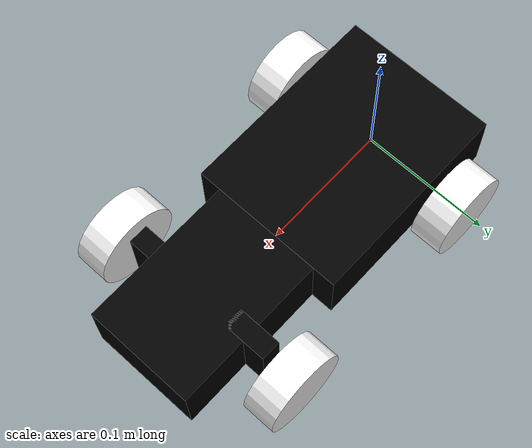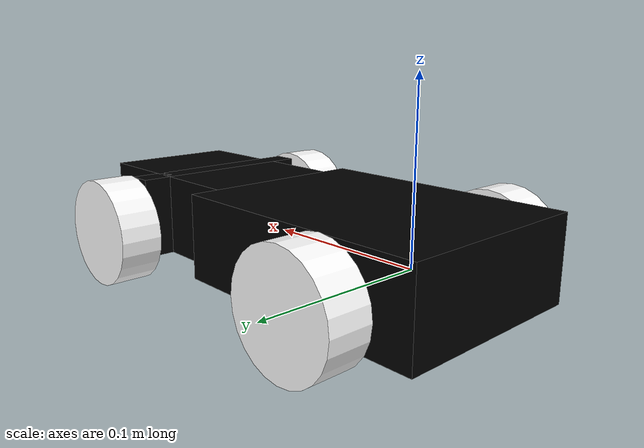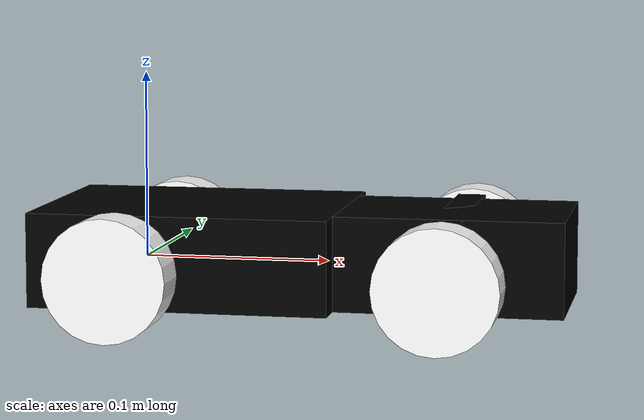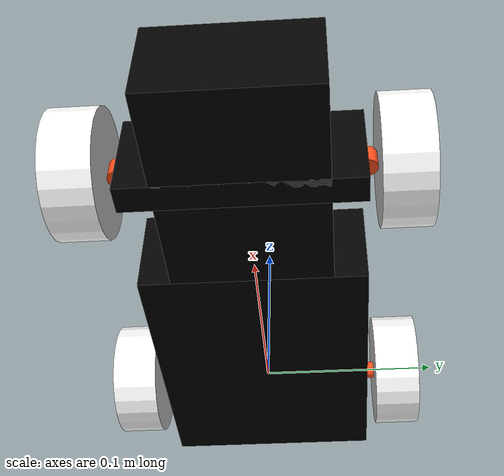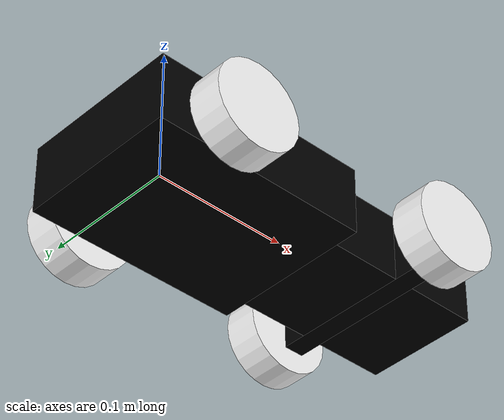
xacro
<?xml version="1.0"?>
<robot xmlns:xacro="http://www.ros.org/wiki/xacro">

    <xacro:include filename="inertial_macros.xacro"/>
    <xacro:property name="pi" value="3.141592653589793"/>

    <material name="white">
        <color rgba = "1 1 1 1" />
    </material>

    <material name="orange">
        <color rgba = "1 0.3 0.1 1" />
    </material>

    <material name="blue">
        <color rgba = "0.2 0.2 1 1" />
    </material>

    <material name="black">
        <color rgba = "0 0 0 1" />
    </material>

    <!--BASE LINK-->

    <link name="base_link">
        <origin xyz="0 0 0.07 "/>
    </link>

    <!--BACK CHSASSIS LINK-->

    <joint name="back_chassis_joint" type="fixed">
        <parent link="base_link"/>
        <child link = "back_chassis"/>
        <origin xyz="-0.05 0 -0.02 "/>
    </joint>

    <link name="back_chassis">
        <visual>
            <origin xyz="0.08 0 0.025"/>
            <geometry>
                <box size="0.16 0.12 0.05"/>
            </geometry>

            <material name="black"/>
        </visual>
        <collision>
            <origin xyz="0.08 0 0.025"/>
            <geometry>
                <box size="0.16 0.12 0.05"/>
            </geometry>
        </collision>
        <xacro:inertial_box mass="0.6" x="0.16" y="0.12" z ="0.05">
            <origin xyz="0.08 0 0.025" rpy="0 0 0"/>
        </xacro:inertial_box>
    </link>

    <gazebo reference="back_chassis">
        <material>Gazebo/Black</material>
    </gazebo>

    <!--FRONT CHSASSIS LINK-->

    <joint name="chassis_front_joint" type="fixed">
        <parent link="back_chassis"/>
        <child link = "front_chassis"/>
        <origin xyz="0.16 0 0 "/>
    </joint>

    <link name="front_chassis">
        <visual>
            <origin xyz="0.06 0 0.025"/>
            <geometry>
                <box size="0.12 0.085 0.05"/>
            </geometry>
            <material name="black"/>
        </visual>
        <collision>
            <origin xyz="0.06 0 0.025"/>
            <geometry>
                <box size="0.12 0.085 0.05"/>
            </geometry>
        </collision>
        <xacro:inertial_box mass="0.3" x="0.12" y="0.85" z ="0.05">
            <origin xyz="0.06 0 0.025" rpy="0 0 0"/>
        </xacro:inertial_box>
    </link>

    <gazebo reference="front_chassis">
        <material>Gazebo/Black</material>
    </gazebo>

    <!-- STEERING ROD -->

    <joint name="steering_rod_joint" type="fixed">
        <parent link="base_link"/>
        <child link="steering_rod"/>
        <origin xyz="0.17 0 0.005"/>
    </joint>

    <link name="steering_rod">
        <visual>
            <origin xyz="0 0 0"/>
            <geometry>
            <box size="0.015 0.12 0.05"/>
            </geometry>
            <material name="black"/>
        </visual>
        <collision>
            <origin xyz="0 0 0"/>
            <geometry>
            <box size="0.015 0.12 0.05"/>
            </geometry>
        </collision>
        <xacro:inertial_box mass="0.15" x="0.15" y="0.12" z ="0.05">
            <origin xyz="0 0 0" rpy="0 0 0"/>
        </xacro:inertial_box>
    </link>

    <gazebo reference="steering_rod">
        <material>Gazebo/Black</material>
    </gazebo>

    <!--LEFT BACK WHEEL'S AXIS-->

    <joint name="left_back_axis_joint" type="fixed">
        <parent link="base_link"/>
        <child link="left_back_axis"/>
        <origin xyz="0 0.06 0" rpy="-${pi/2} 0 0"/>

    </joint>

    <link name="left_back_axis">
        <visual>
            <geometry>
                <cylinder radius="0.005" length="0.01"/>
            </geometry>
            <material name="orange"/>
        </visual>
        <collision>
            <geometry>
                <cylinder radius="0.005" length="0.01"/>
            </geometry>
        </collision>
        <xacro:inertial_cylinder mass="0.01" length="0.01" radius="0.005">
            <origin xyz="0 0 0" rpy="0 0 0"/>
        </xacro:inertial_cylinder>
    </link>

    <gazebo reference="left_back_axis">
        <material>Gazebo/Orange</material>
    </gazebo>

    <!--Left back wheel-->

    <joint name = "left_back_wheel_joint" type="continuous">
        <parent link="left_back_axis"/>
        <child link="left_back_wheel"/>
        <origin xyz="0 0 0.0175"/>
        <axis xyz="0 0 1"/>
        <limit effort="1000" velocity="10"/>
        <dynamics damping="1.0" friction="1.0"/>
    </joint>

    <link name = "left_back_wheel">
        <visual>
            <geometry>
                <cylinder radius="0.0325" length="0.025"/>
            </geometry>
            <material name ="white"/>
        </visual>
        <collision>
            <geometry>
                <cylinder radius="0.0325" length="0.025"/>
            </geometry>
        </collision>
        <xacro:inertial_cylinder mass="0.08" length="0.025" radius="0.0325">
            <origin xyz="0 0 0" rpy="0 0 0"/>
        </xacro:inertial_cylinder>
    </link>

    <gazebo reference="left_back_wheel">
        <material>Gazebo/White</material>
    </gazebo>

    <!--Right BACK WHEEL'S AXIS-->

    <joint name="right_back_axis_joint" type="fixed">
        <parent link="base_link"/>
        <child link="right_back_axis"/>
        <origin xyz="0 -0.06 0" rpy="${pi/2} 0 0"/>

    </joint>

    <link name="right_back_axis">
        <visual>
            <geometry>
                <cylinder radius="0.005" length="0.01"/>
            </geometry>
            <material name="orange"/>
        </visual>
        <collision>
            <geometry>
                <cylinder radius="0.005" length="0.01"/>
            </geometry>
        </collision>
        <xacro:inertial_cylinder mass="0.01" length="0.01" radius="0.005">
            <origin xyz="0 0 0" rpy="0 0 0"/>
        </xacro:inertial_cylinder>
    </link>

    <gazebo reference="right_back_axis">
        <material>Gazebo/Orange</material>
    </gazebo>

    <!--Right back wheel-->

    <joint name = "right_back_wheel_joint" type="continuous">
        <parent link="right_back_axis"/>
        <child link="right_back_wheel"/>
        <origin xyz="0 0 0.0175"/>
        <axis xyz="0 0 -1"/>
        <limit effort="1000" velocity="10"/>
        <dynamics damping="1.0" friction="1.0"/>
    </joint>

    <link name = "right_back_wheel">
        <visual>
            <geometry>
                <cylinder radius="0.0325" length="0.025"/>
            </geometry>
            <material name ="white"/>
        </visual>
        <collision>
            <geometry>
                <cylinder radius="0.0325" length="0.025"/>
            </geometry>
        </collision>
        <xacro:inertial_cylinder mass="0.08" length="0.025" radius="0.0325">
            <origin xyz="0 0 0" rpy="0 0 0"/>
        </xacro:inertial_cylinder>
    </link>

    <gazebo reference="right_back_wheel">
        <material>Gazebo/White</material>
    </gazebo>

    <!--Front left axis-->

    <joint name="left_front_axis_joint" type="revolute">
        <parent link="base_link"/>
        <child link="left_front_axis"/>
        <origin xyz="0.17 0.06 0" rpy="0 0 0"/>
        <axis xyz="0 0 1"/> <!-- rotation around Y-axis -->
        <limit lower="-0.523599" upper="0.523599" effort="1000" velocity="5.0"/>
        <dynamics damping="1.0" friction="1.0"/>
    </joint>

    <link name="left_front_axis">
        <visual>
            <geometry>
                <cylinder radius="0.005" length="0.01"/>
            </geometry>
            <material name="orange"/>
        </visual>
        <collision>
            <geometry>
                <cylinder radius="0.005" length="0.01"/>
            </geometry>
        </collision>
        <xacro:inertial_cylinder mass="0.01" length="0.01" radius="0.005">
            <origin xyz="0 0 0" rpy="0 0 0"/>
        </xacro:inertial_cylinder>
    </link>

    <gazebo reference="left_front_axis">
        <material>Gazebo/Orange</material>
    </gazebo>

    <!--FRONT LEFT WHEEL-->
    <joint name = "left_front_wheel_joint" type="continuous">
        <parent link="left_front_axis"/>
        <child link="left_front_wheel"/>
        <origin xyz="0 0.0175 0" rpy="-${pi/2} 0 0"/>
        <axis xyz="0 0 1"/> <!--for wheel to spin around z axis-->
    </joint>

    <link name = "left_front_wheel">
        <visual>
            <geometry>
                <cylinder radius="0.0325" length="0.025"/>
            </geometry>
            <material name ="white"/>
        </visual>
        <collision>
            <geometry>
                <cylinder radius="0.0325" length="0.025"/>
            </geometry>
        </collision>
        <xacro:inertial_cylinder mass="0.08" length="0.025" radius="0.0325">
            <origin xyz="0 0 0" rpy="0 0 0"/>
        </xacro:inertial_cylinder>
    </link>

    <gazebo reference="left_front_wheel">
        <material>Gazebo/White</material>
    </gazebo>

    <!--FRON RIGHT AXIS-->

    <joint name="right_front_axis_joint" type="revolute">
        <parent link="base_link"/>
        <child link="right_front_axis"/>
        <origin xyz="0.17 -0.06 0"/>
        <axis xyz="0 0 1"/>
        <limit lower="-0.523599" upper="0.523599" effort="1000" velocity="5.0"/>
        <dynamics damping="1.0" friction="1.0"/>
    </joint>

    <link name="right_front_axis">
        <visual>
            <geometry>
                <cylinder radius="0.005" length="0.01"/>
            </geometry>
            <material name="orange"/>
        </visual>
        <collision>
            <geometry>
                <cylinder radius="0.005" length="0.01"/>
            </geometry>
        </collision>
        <xacro:inertial_cylinder mass="0.01" length="0.01" radius="0.005">
            <origin xyz="0 0 0" rpy="0 0 0"/>
        </xacro:inertial_cylinder>
    </link>

    <gazebo reference="right_front_axis">
        <material>Gazebo/Orange</material>
    </gazebo>

    <!--Right front wheel-->

    <joint name = "right_front_wheel_joint" type="continuous">
        <parent link="right_front_axis"/>
        <child link="right_front_wheel"/>
        <origin xyz="0 -0.0175 0" rpy="${pi/2} 0 0"/>
        <axis xyz="0 0 -1"/> <!--for wheel to spin around z axis-->
    </joint>

    <link name = "right_front_wheel">
        <visual>
            <geometry>
                <cylinder radius="0.0325" length="0.025"/>
            </geometry>
            <material name ="white"/>
        </visual>
        <collision>
            <geometry>
                <cylinder radius="0.0325" length="0.025"/>
            </geometry>
        </collision>
        <xacro:inertial_cylinder mass="0.08" length="0.025" radius="0.0325">
            <origin xyz="0 0 0" rpy="0 0 0"/>
        </xacro:inertial_cylinder>
    </link>

    <gazebo reference="right_front_wheel">
        <material>Gazebo/White</material>
    </gazebo>

</robot>
